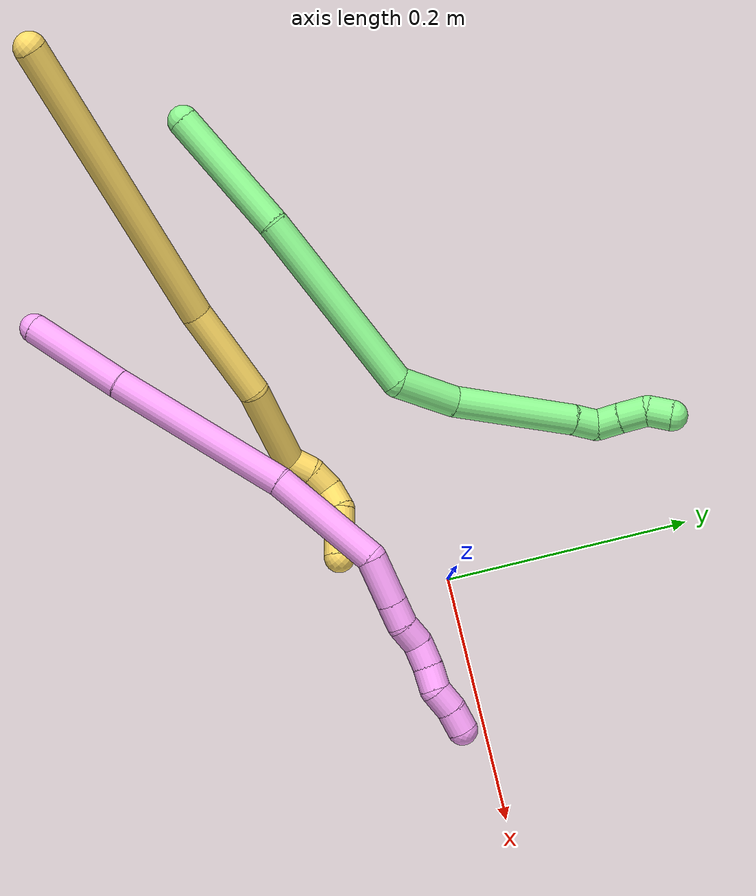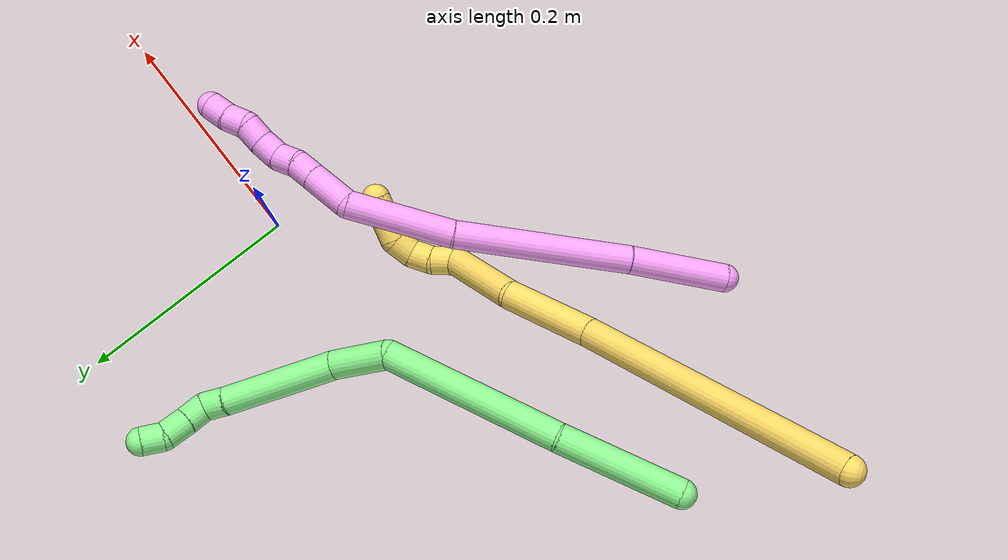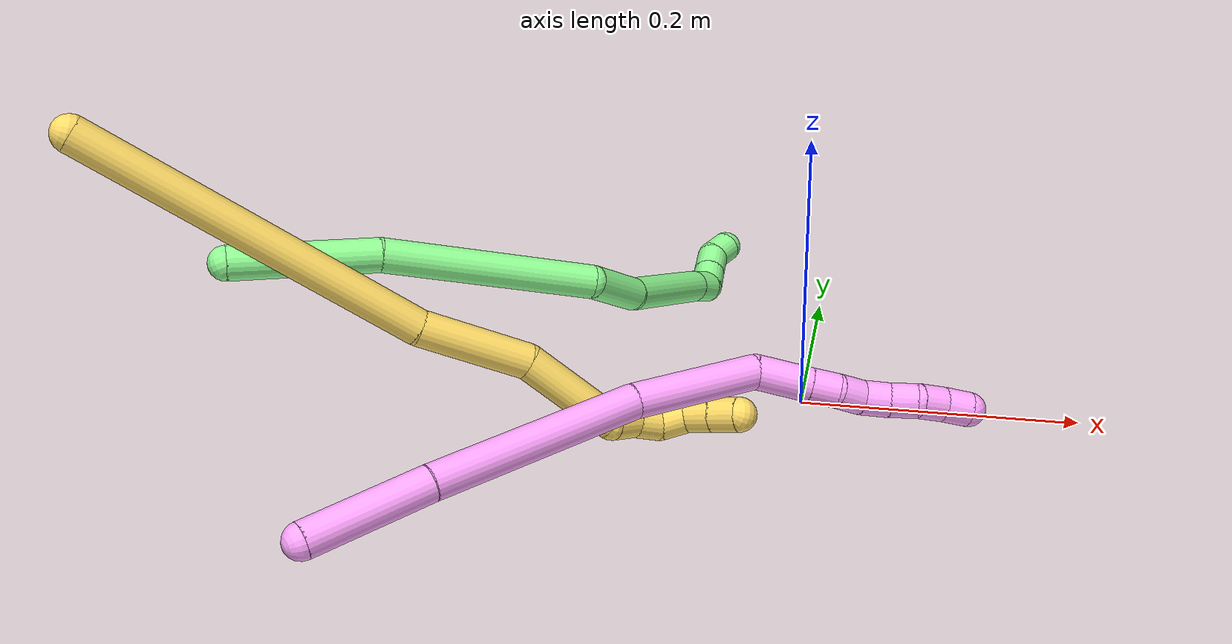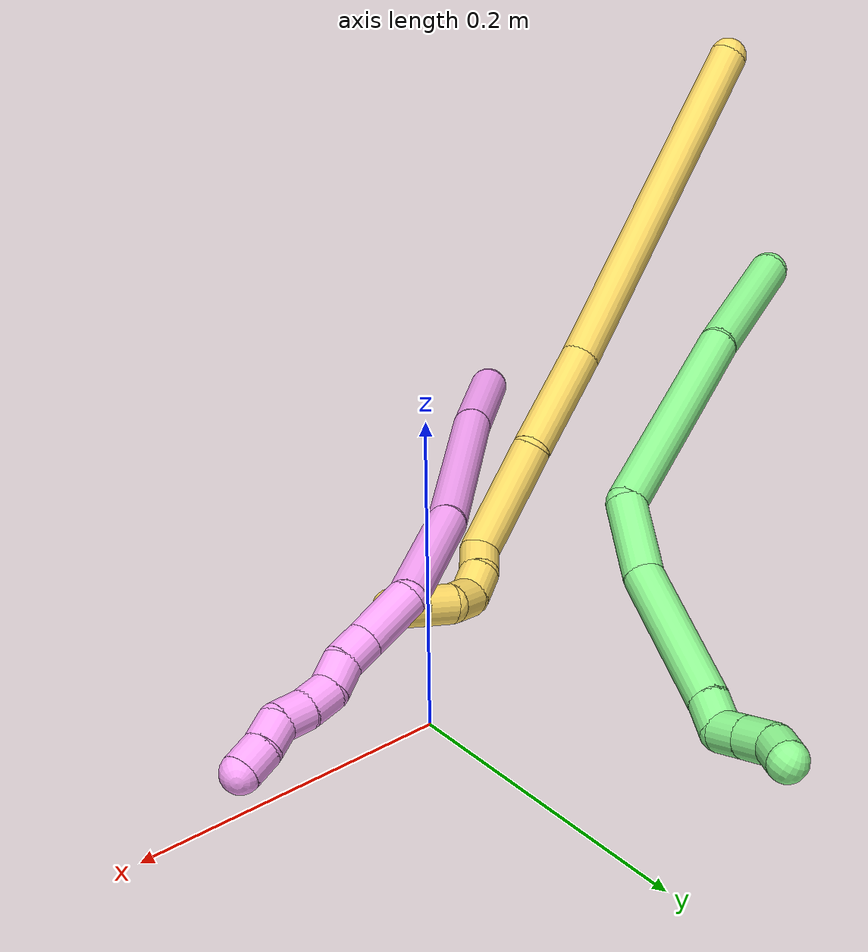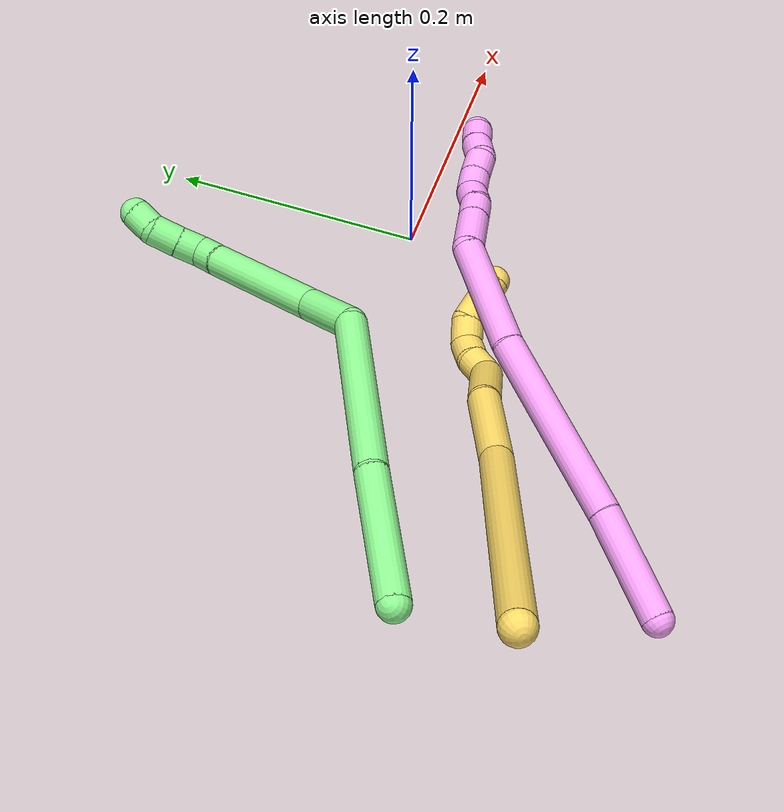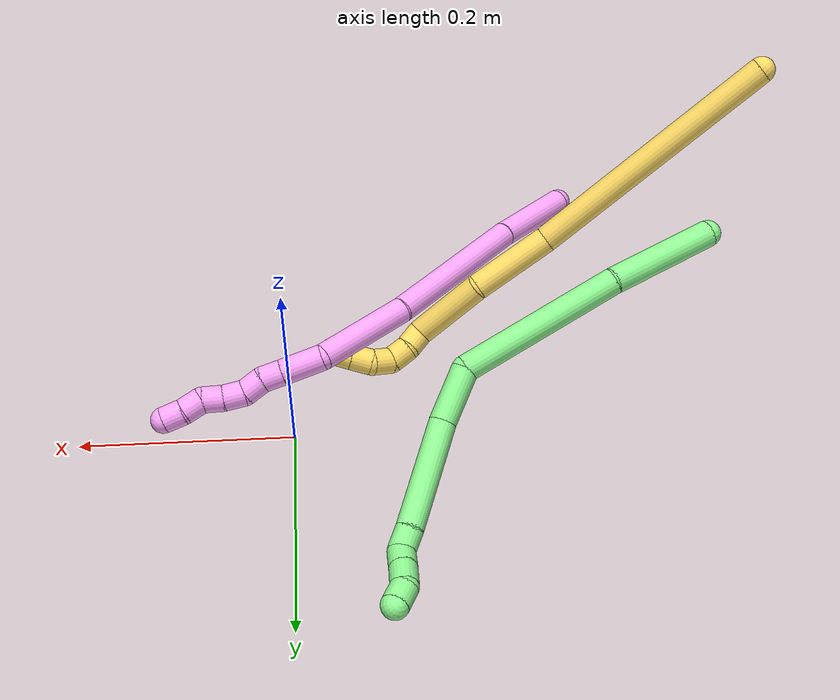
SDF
<sdf version="1.7">
 <world name="default">
  <model name="4">
   <static>0</static>
   <link name="4">
    <collision name="collision-cylinder-e_1_1_4">
     <pose>-0.002207 0.002157 -0.043623 -3.09218 -0.050497 1.59253</pose>
     <geometry><cylinder><radius>0.0125</radius><length>0.087465</length></cylinder></geometry>
     <surface>
      <friction><ode><mu>1.16</mu><mu2>1.16</mu2><slip1>0</slip1><slip2>0</slip2></ode></friction>
      <contact><ode><kp>1e+06</kp><kd>1</kd><max_vel>0</max_vel><min_depth>0.001</min_depth></ode></contact>
     </surface>
    </collision>
    <visual name="visual-cylinder-e_1_1_4">
     <pose>-0.002207 0.002157 -0.043623 -3.09218 -0.050497 1.59253</pose>
     <geometry><cylinder><radius>0.0125</radius><length>0.087465</length></cylinder></geometry>
     <material><ambient>1 0.65098 0.996078 1</ambient></material>
    </visual>
    <collision name="collision-cylinder-e_2_4_5">
     <pose>-0.003205 0.005289 -0.165172 -3.12909 0.015523 -1.78581</pose>
     <geometry><cylinder><radius>0.0125</radius><length>0.155882</length></cylinder></geometry>
     <surface>
      <friction><ode><mu>1.16</mu><mu2>1.16</mu2><slip1>0</slip1><slip2>0</slip2></ode></friction>
      <contact><ode><kp>1e+06</kp><kd>1</kd><max_vel>0</max_vel><min_depth>0.001</min_depth></ode></contact>
     </surface>
    </collision>
    <visual name="visual-cylinder-e_2_4_5">
     <pose>-0.003205 0.005289 -0.165172 -3.12909 0.015523 -1.78581</pose>
     <geometry><cylinder><radius>0.0125</radius><length>0.155882</length></cylinder></geometry>
     <material><ambient>1 0.65098 0.996078 1</ambient></material>
    </visual>
    <collision name="collision-cylinder-e_3_5_6">
     <pose>0.001887 0.013605 -0.289921 -2.98604 0.081732 -0.966393</pose>
     <geometry><cylinder><radius>0.0125</radius><length>0.095109</length></cylinder></geometry>
     <surface>
      <friction><ode><mu>1.16</mu><mu2>1.16</mu2><slip1>0</slip1><slip2>0</slip2></ode></friction>
      <contact><ode><kp>1e+06</kp><kd>1</kd><max_vel>0</max_vel><min_depth>0.001</min_depth></ode></contact>
     </surface>
    </collision>
    <visual name="visual-cylinder-e_3_5_6">
     <pose>0.001887 0.013605 -0.289921 -2.98604 0.081732 -0.966393</pose>
     <geometry><cylinder><radius>0.0125</radius><length>0.095109</length></cylinder></geometry>
     <material><ambient>1 0.65098 0.996078 1</ambient></material>
    </visual>
    <collision name="collision-cylinder-e_4_6_7">
     <pose>0.012942 0.031813 -0.352102 -2.52586 0.364235 -1.0499</pose>
     <geometry><cylinder><radius>0.0125</radius><length>0.040265</length></cylinder></geometry>
     <surface>
      <friction><ode><mu>1.16</mu><mu2>1.16</mu2><slip1>0</slip1><slip2>0</slip2></ode></friction>
      <contact><ode><kp>1e+06</kp><kd>1</kd><max_vel>0</max_vel><min_depth>0.001</min_depth></ode></contact>
     </surface>
    </collision>
    <visual name="visual-cylinder-e_4_6_7">
     <pose>0.012942 0.031813 -0.352102 -2.52586 0.364235 -1.0499</pose>
     <geometry><cylinder><radius>0.0125</radius><length>0.040265</length></cylinder></geometry>
     <material><ambient>1 0.65098 0.996078 1</ambient></material>
    </visual>
    <collision name="collision-cylinder-e_5_7_8">
     <pose>0.023516 0.0482 -0.375297 -2.52778 0.341043 -0.995428</pose>
     <geometry><cylinder><radius>0.0125</radius><length>0.020347</length></cylinder></geometry>
     <surface>
      <friction><ode><mu>1.16</mu><mu2>1.16</mu2><slip1>0</slip1><slip2>0</slip2></ode></friction>
      <contact><ode><kp>1e+06</kp><kd>1</kd><max_vel>0</max_vel><min_depth>0.001</min_depth></ode></contact>
     </surface>
    </collision>
    <visual name="visual-cylinder-e_5_7_8">
     <pose>0.023516 0.0482 -0.375297 -2.52778 0.341043 -0.995428</pose>
     <geometry><cylinder><radius>0.0125</radius><length>0.020347</length></cylinder></geometry>
     <material><ambient>1 0.65098 0.996078 1</ambient></material>
    </visual>
    <collision name="collision-cylinder-e_6_8_9">
     <pose>0.031815 0.05658 -0.391593 -2.81584 0.501545 -2.00081</pose>
     <geometry><cylinder><radius>0.0125</radius><length>0.020366</length></cylinder></geometry>
     <surface>
      <friction><ode><mu>1.16</mu><mu2>1.16</mu2><slip1>0</slip1><slip2>0</slip2></ode></friction>
      <contact><ode><kp>1e+06</kp><kd>1</kd><max_vel>0</max_vel><min_depth>0.001</min_depth></ode></contact>
     </surface>
    </collision>
    <visual name="visual-cylinder-e_6_8_9">
     <pose>0.031815 0.05658 -0.391593 -2.81584 0.501545 -2.00081</pose>
     <geometry><cylinder><radius>0.0125</radius><length>0.020366</length></cylinder></geometry>
     <material><ambient>1 0.65098 0.996078 1</ambient></material>
    </visual>
    <collision name="collision-cylinder-e_7_9_10">
     <pose>0.038781 0.065334 -0.408172 -2.51348 0.203473 -0.609062</pose>
     <geometry><cylinder><radius>0.0125</radius><length>0.020492</length></cylinder></geometry>
     <surface>
      <friction><ode><mu>1.16</mu><mu2>1.16</mu2><slip1>0</slip1><slip2>0</slip2></ode></friction>
      <contact><ode><kp>1e+06</kp><kd>1</kd><max_vel>0</max_vel><min_depth>0.001</min_depth></ode></contact>
     </surface>
    </collision>
    <visual name="visual-cylinder-e_7_9_10">
     <pose>0.038781 0.065334 -0.408172 -2.51348 0.203473 -0.609062</pose>
     <geometry><cylinder><radius>0.0125</radius><length>0.020492</length></cylinder></geometry>
     <material><ambient>1 0.65098 0.996078 1</ambient></material>
    </visual>
    <collision name="collision-cylinder-e_8_10_11">
     <pose>0.041516 0.077882 -0.423764 -2.41426 0.066369 -0.174006</pose>
     <geometry><cylinder><radius>0.0125</radius><length>0.020053</length></cylinder></geometry>
     <surface>
      <friction><ode><mu>1.16</mu><mu2>1.16</mu2><slip1>0</slip1><slip2>0</slip2></ode></friction>
      <contact><ode><kp>1e+06</kp><kd>1</kd><max_vel>0</max_vel><min_depth>0.001</min_depth></ode></contact>
     </surface>
    </collision>
    <visual name="visual-cylinder-e_8_10_11">
     <pose>0.041516 0.077882 -0.423764 -2.41426 0.066369 -0.174006</pose>
     <geometry><cylinder><radius>0.0125</radius><length>0.020053</length></cylinder></geometry>
     <material><ambient>1 0.65098 0.996078 1</ambient></material>
    </visual>
    <collision name="collision-cylinder-e_9_11_12">
     <pose>0.045851 0.087591 -0.44003 -2.80695 0.375443 -1.68804</pose>
     <geometry><cylinder><radius>0.0125</radius><length>0.020013</length></cylinder></geometry>
     <surface>
      <friction><ode><mu>1.16</mu><mu2>1.16</mu2><slip1>0</slip1><slip2>0</slip2></ode></friction>
      <contact><ode><kp>1e+06</kp><kd>1</kd><max_vel>0</max_vel><min_depth>0.001</min_depth></ode></contact>
     </surface>
    </collision>
    <visual name="visual-cylinder-e_9_11_12">
     <pose>0.045851 0.087591 -0.44003 -2.80695 0.375443 -1.68804</pose>
     <geometry><cylinder><radius>0.0125</radius><length>0.020013</length></cylinder></geometry>
     <material><ambient>1 0.65098 0.996078 1</ambient></material>
    </visual>
    <collision name="collision-cylinder-e_10_12_2">
     <pose>0.052968 0.095492 -0.456869 -2.59971 0.351864 -1.13861</pose>
     <geometry><cylinder><radius>0.0125</radius><length>0.020008</length></cylinder></geometry>
     <surface>
      <friction><ode><mu>1.16</mu><mu2>1.16</mu2><slip1>0</slip1><slip2>0</slip2></ode></friction>
      <contact><ode><kp>1e+06</kp><kd>1</kd><max_vel>0</max_vel><min_depth>0.001</min_depth></ode></contact>
     </surface>
    </collision>
    <visual name="visual-cylinder-e_10_12_2">
     <pose>0.052968 0.095492 -0.456869 -2.59971 0.351864 -1.13861</pose>
     <geometry><cylinder><radius>0.0125</radius><length>0.020008</length></cylinder></geometry>
     <material><ambient>1 0.65098 0.996078 1</ambient></material>
    </visual>
    <collision name="collision-sphere-2">
     <pose>0.056415 0.100335 -0.464915 0 -0 0</pose>
     <geometry><sphere><radius>0.0125</radius></sphere></geometry>
     <surface>
      <friction><ode><mu>1.16</mu><mu2>1.16</mu2><slip1>0</slip1><slip2>0</slip2></ode></friction>
      <contact><ode><kp>1e+06</kp><kd>1</kd><max_vel>0</max_vel><min_depth>0.001</min_depth></ode></contact>
     </surface>
    </collision>
    <visual name="visual-sphere-2">
     <pose>0.056415 0.100335 -0.464915 0 -0 0</pose>
     <geometry><sphere><radius>0.0125</radius></sphere></geometry>
     <material><ambient>1 0.65098 0.996078 1</ambient></material>
    </visual>
    <collision name="collision-sphere-12">
     <pose>0.04952 0.090649 -0.448823 0 -0 0</pose>
     <geometry><sphere><radius>0.0125</radius></sphere></geometry>
     <surface>
      <friction><ode><mu>1.16</mu><mu2>1.16</mu2><slip1>0</slip1><slip2>0</slip2></ode></friction>
      <contact><ode><kp>1e+06</kp><kd>1</kd><max_vel>0</max_vel><min_depth>0.001</min_depth></ode></contact>
     </surface>
    </collision>
    <visual name="visual-sphere-12">
     <pose>0.04952 0.090649 -0.448823 0 -0 0</pose>
     <geometry><sphere><radius>0.0125</radius></sphere></geometry>
     <material><ambient>1 0.65098 0.996078 1</ambient></material>
    </visual>
    <collision name="collision-sphere-11">
     <pose>0.042181 0.084534 -0.431237 0 -0 0</pose>
     <geometry><sphere><radius>0.0125</radius></sphere></geometry>
     <surface>
      <friction><ode><mu>1.16</mu><mu2>1.16</mu2><slip1>0</slip1><slip2>0</slip2></ode></friction>
      <contact><ode><kp>1e+06</kp><kd>1</kd><max_vel>0</max_vel><min_depth>0.001</min_depth></ode></contact>
     </surface>
    </collision>
    <visual name="visual-sphere-11">
     <pose>0.042181 0.084534 -0.431237 0 -0 0</pose>
     <geometry><sphere><radius>0.0125</radius></sphere></geometry>
     <material><ambient>1 0.65098 0.996078 1</ambient></material>
    </visual>
    <collision name="collision-sphere-10">
     <pose>0.040851 0.07123 -0.416292 0 -0 0</pose>
     <geometry><sphere><radius>0.0125</radius></sphere></geometry>
     <surface>
      <friction><ode><mu>1.16</mu><mu2>1.16</mu2><slip1>0</slip1><slip2>0</slip2></ode></friction>
      <contact><ode><kp>1e+06</kp><kd>1</kd><max_vel>0</max_vel><min_depth>0.001</min_depth></ode></contact>
     </surface>
    </collision>
    <visual name="visual-sphere-10">
     <pose>0.040851 0.07123 -0.416292 0 -0 0</pose>
     <geometry><sphere><radius>0.0125</radius></sphere></geometry>
     <material><ambient>1 0.65098 0.996078 1</ambient></material>
    </visual>
    <collision name="collision-sphere-9">
     <pose>0.036711 0.059437 -0.400053 0 -0 0</pose>
     <geometry><sphere><radius>0.0125</radius></sphere></geometry>
     <surface>
      <friction><ode><mu>1.16</mu><mu2>1.16</mu2><slip1>0</slip1><slip2>0</slip2></ode></friction>
      <contact><ode><kp>1e+06</kp><kd>1</kd><max_vel>0</max_vel><min_depth>0.001</min_depth></ode></contact>
     </surface>
    </collision>
    <visual name="visual-sphere-9">
     <pose>0.036711 0.059437 -0.400053 0 -0 0</pose>
     <geometry><sphere><radius>0.0125</radius></sphere></geometry>
     <material><ambient>1 0.65098 0.996078 1</ambient></material>
    </visual>
    <collision name="collision-sphere-4">
     <pose>-0.004415 0.004315 -0.087247 0 -0 0</pose>
     <geometry><sphere><radius>0.0125</radius></sphere></geometry>
     <surface>
      <friction><ode><mu>1.16</mu><mu2>1.16</mu2><slip1>0</slip1><slip2>0</slip2></ode></friction>
      <contact><ode><kp>1e+06</kp><kd>1</kd><max_vel>0</max_vel><min_depth>0.001</min_depth></ode></contact>
     </surface>
    </collision>
    <visual name="visual-sphere-4">
     <pose>-0.004415 0.004315 -0.087247 0 -0 0</pose>
     <geometry><sphere><radius>0.0125</radius></sphere></geometry>
     <material><ambient>1 0.65098 0.996078 1</ambient></material>
    </visual>
    <collision name="collision-sphere-1">
     <geometry><sphere><radius>0.0125</radius></sphere></geometry>
     <surface>
      <friction><ode><mu>1.16</mu><mu2>1.16</mu2><slip1>0</slip1><slip2>0</slip2></ode></friction>
      <contact><ode><kp>1e+06</kp><kd>1</kd><max_vel>0</max_vel><min_depth>0.001</min_depth></ode></contact>
     </surface>
    </collision>
    <visual name="visual-sphere-1">
     <geometry><sphere><radius>0.0125</radius></sphere></geometry>
     <material><ambient>1 0.65098 0.996078 1</ambient></material>
    </visual>
    <collision name="collision-sphere-8">
     <pose>0.026919 0.053722 -0.383134 0 -0 0</pose>
     <geometry><sphere><radius>0.0125</radius></sphere></geometry>
     <surface>
      <friction><ode><mu>1.16</mu><mu2>1.16</mu2><slip1>0</slip1><slip2>0</slip2></ode></friction>
      <contact><ode><kp>1e+06</kp><kd>1</kd><max_vel>0</max_vel><min_depth>0.001</min_depth></ode></contact>
     </surface>
    </collision>
    <visual name="visual-sphere-8">
     <pose>0.026919 0.053722 -0.383134 0 -0 0</pose>
     <geometry><sphere><radius>0.0125</radius></sphere></geometry>
     <material><ambient>1 0.65098 0.996078 1</ambient></material>
    </visual>
    <collision name="collision-sphere-5">
     <pose>-0.001995 0.006263 -0.243098 0 -0 0</pose>
     <geometry><sphere><radius>0.0125</radius></sphere></geometry>
     <surface>
      <friction><ode><mu>1.16</mu><mu2>1.16</mu2><slip1>0</slip1><slip2>0</slip2></ode></friction>
      <contact><ode><kp>1e+06</kp><kd>1</kd><max_vel>0</max_vel><min_depth>0.001</min_depth></ode></contact>
     </surface>
    </collision>
    <visual name="visual-sphere-5">
     <pose>-0.001995 0.006263 -0.243098 0 -0 0</pose>
     <geometry><sphere><radius>0.0125</radius></sphere></geometry>
     <material><ambient>1 0.65098 0.996078 1</ambient></material>
    </visual>
    <collision name="collision-sphere-6">
     <pose>0.00577 0.020948 -0.336745 0 -0 0</pose>
     <geometry><sphere><radius>0.0125</radius></sphere></geometry>
     <surface>
      <friction><ode><mu>1.16</mu><mu2>1.16</mu2><slip1>0</slip1><slip2>0</slip2></ode></friction>
      <contact><ode><kp>1e+06</kp><kd>1</kd><max_vel>0</max_vel><min_depth>0.001</min_depth></ode></contact>
     </surface>
    </collision>
    <visual name="visual-sphere-6">
     <pose>0.00577 0.020948 -0.336745 0 -0 0</pose>
     <geometry><sphere><radius>0.0125</radius></sphere></geometry>
     <material><ambient>1 0.65098 0.996078 1</ambient></material>
    </visual>
    <collision name="collision-sphere-7">
     <pose>0.020114 0.042678 -0.367459 0 -0 0</pose>
     <geometry><sphere><radius>0.0125</radius></sphere></geometry>
     <surface>
      <friction><ode><mu>1.16</mu><mu2>1.16</mu2><slip1>0</slip1><slip2>0</slip2></ode></friction>
      <contact><ode><kp>1e+06</kp><kd>1</kd><max_vel>0</max_vel><min_depth>0.001</min_depth></ode></contact>
     </surface>
    </collision>
    <visual name="visual-sphere-7">
     <pose>0.020114 0.042678 -0.367459 0 -0 0</pose>
     <geometry><sphere><radius>0.0125</radius></sphere></geometry>
     <material><ambient>1 0.65098 0.996078 1</ambient></material>
    </visual>
    <inertial>
     <pose>0.009478 0.02457 -0.24347 0 -0 0</pose>
     <mass>0.5</mass>
     <inertia>
      <ixx>-0.000345</ixx>
      <ixy>0</ixy>
      <ixz>0</ixz>
      <iyy>-0.000296</iyy>
      <iyz>0</iyz>
      <izz>-7.6e-05</izz>
     </inertia>
    </inertial>
   </link>
   <pose>-0.278934 -0.281419 0.012027 -3.14026 1.44904 0.795305</pose>
  </model>
  <model name="5">
   <static>0</static>
   <link name="5">
    <collision name="collision-cylinder-e_1_1_4">
     <pose>0.037878 0.002955 -0.117432 -3.11644 0.311924 -2.98195</pose>
     <geometry><cylinder><radius>0.0125</radius><length>0.246851</length></cylinder></geometry>
     <surface>
      <friction><ode><mu>1.16</mu><mu2>1.16</mu2><slip1>0</slip1><slip2>0</slip2></ode></friction>
      <contact><ode><kp>1e+06</kp><kd>1</kd><max_vel>0</max_vel><min_depth>0.001</min_depth></ode></contact>
     </surface>
    </collision>
    <visual name="visual-cylinder-e_1_1_4">
     <pose>0.037878 0.002955 -0.117432 -3.11644 0.311924 -2.98195</pose>
     <geometry><cylinder><radius>0.0125</radius><length>0.246851</length></cylinder></geometry>
     <material><ambient>1 0.858824 0.4 1</ambient></material>
    </visual>
    <collision name="collision-cylinder-e_2_4_5">
     <pose>0.081109 0.011124 -0.273452 -3.00725 0.136627 -1.58773</pose>
     <geometry><cylinder><radius>0.0125</radius><length>0.078609</length></cylinder></geometry>
     <surface>
      <friction><ode><mu>1.16</mu><mu2>1.16</mu2><slip1>0</slip1><slip2>0</slip2></ode></friction>
      <contact><ode><kp>1e+06</kp><kd>1</kd><max_vel>0</max_vel><min_depth>0.001</min_depth></ode></contact>
     </surface>
    </collision>
    <visual name="visual-cylinder-e_2_4_5">
     <pose>0.081109 0.011124 -0.273452 -3.00725 0.136627 -1.58773</pose>
     <geometry><cylinder><radius>0.0125</radius><length>0.078609</length></cylinder></geometry>
     <material><ambient>1 0.858824 0.4 1</ambient></material>
    </visual>
    <collision name="collision-cylinder-e_3_5_6">
     <pose>0.101687 0.015857 -0.345722 3.12728 0.424475 3.07518</pose>
     <geometry><cylinder><radius>0.0125</radius><length>0.073933</length></cylinder></geometry>
     <surface>
      <friction><ode><mu>1.16</mu><mu2>1.16</mu2><slip1>0</slip1><slip2>0</slip2></ode></friction>
      <contact><ode><kp>1e+06</kp><kd>1</kd><max_vel>0</max_vel><min_depth>0.001</min_depth></ode></contact>
     </surface>
    </collision>
    <visual name="visual-cylinder-e_3_5_6">
     <pose>0.101687 0.015857 -0.345722 3.12728 0.424475 3.07518</pose>
     <geometry><cylinder><radius>0.0125</radius><length>0.073933</length></cylinder></geometry>
     <material><ambient>1 0.858824 0.4 1</ambient></material>
    </visual>
    <collision name="collision-cylinder-e_4_6_7">
     <pose>0.113742 0.015101 -0.38904 3.11315 -0.317725 -2.96454</pose>
     <geometry><cylinder><radius>0.0125</radius><length>0.020293</length></cylinder></geometry>
     <surface>
      <friction><ode><mu>1.16</mu><mu2>1.16</mu2><slip1>0</slip1><slip2>0</slip2></ode></friction>
      <contact><ode><kp>1e+06</kp><kd>1</kd><max_vel>0</max_vel><min_depth>0.001</min_depth></ode></contact>
     </surface>
    </collision>
    <visual name="visual-cylinder-e_4_6_7">
     <pose>0.113742 0.015101 -0.38904 3.11315 -0.317725 -2.96454</pose>
     <geometry><cylinder><radius>0.0125</radius><length>0.020293</length></cylinder></geometry>
     <material><ambient>1 0.858824 0.4 1</ambient></material>
    </visual>
    <collision name="collision-cylinder-e_5_7_8">
     <pose>0.110204 0.016136 -0.40865 -3.01108 -0.036521 0.545011</pose>
     <geometry><cylinder><radius>0.0125</radius><length>0.020135</length></cylinder></geometry>
     <surface>
      <friction><ode><mu>1.16</mu><mu2>1.16</mu2><slip1>0</slip1><slip2>0</slip2></ode></friction>
      <contact><ode><kp>1e+06</kp><kd>1</kd><max_vel>0</max_vel><min_depth>0.001</min_depth></ode></contact>
     </surface>
    </collision>
    <visual name="visual-cylinder-e_5_7_8">
     <pose>0.110204 0.016136 -0.40865 -3.01108 -0.036521 0.545011</pose>
     <geometry><cylinder><radius>0.0125</radius><length>0.020135</length></cylinder></geometry>
     <material><ambient>1 0.858824 0.4 1</ambient></material>
    </visual>
    <collision name="collision-cylinder-e_6_8_9">
     <pose>0.107763 0.023966 -0.425946 -2.41399 -0.208467 0.536278</pose>
     <geometry><cylinder><radius>0.0125</radius><length>0.020042</length></cylinder></geometry>
     <surface>
      <friction><ode><mu>1.16</mu><mu2>1.16</mu2><slip1>0</slip1><slip2>0</slip2></ode></friction>
      <contact><ode><kp>1e+06</kp><kd>1</kd><max_vel>0</max_vel><min_depth>0.001</min_depth></ode></contact>
     </surface>
    </collision>
    <visual name="visual-cylinder-e_6_8_9">
     <pose>0.107763 0.023966 -0.425946 -2.41399 -0.208467 0.536278</pose>
     <geometry><cylinder><radius>0.0125</radius><length>0.020042</length></cylinder></geometry>
     <material><ambient>1 0.858824 0.4 1</ambient></material>
    </visual>
    <collision name="collision-cylinder-e_7_9_10">
     <pose>0.107761 0.038879 -0.4384 -2.11969 0.207632 -0.367513</pose>
     <geometry><cylinder><radius>0.0125</radius><length>0.020108</length></cylinder></geometry>
     <surface>
      <friction><ode><mu>1.16</mu><mu2>1.16</mu2><slip1>0</slip1><slip2>0</slip2></ode></friction>
      <contact><ode><kp>1e+06</kp><kd>1</kd><max_vel>0</max_vel><min_depth>0.001</min_depth></ode></contact>
     </surface>
    </collision>
    <visual name="visual-cylinder-e_7_9_10">
     <pose>0.107761 0.038879 -0.4384 -2.11969 0.207632 -0.367513</pose>
     <geometry><cylinder><radius>0.0125</radius><length>0.020108</length></cylinder></geometry>
     <material><ambient>1 0.858824 0.4 1</ambient></material>
    </visual>
    <collision name="collision-cylinder-e_8_10_2">
     <pose>0.111959 0.055669 -0.44856 -2.11022 0.213806 -0.374199</pose>
     <geometry><cylinder><radius>0.0125</radius><length>0.020029</length></cylinder></geometry>
     <surface>
      <friction><ode><mu>1.16</mu><mu2>1.16</mu2><slip1>0</slip1><slip2>0</slip2></ode></friction>
      <contact><ode><kp>1e+06</kp><kd>1</kd><max_vel>0</max_vel><min_depth>0.001</min_depth></ode></contact>
     </surface>
    </collision>
    <visual name="visual-cylinder-e_8_10_2">
     <pose>0.111959 0.055669 -0.44856 -2.11022 0.213806 -0.374199</pose>
     <geometry><cylinder><radius>0.0125</radius><length>0.020029</length></cylinder></geometry>
     <material><ambient>1 0.858824 0.4 1</ambient></material>
    </visual>
    <collision name="collision-sphere-2">
     <pose>0.114084 0.064066 -0.453587 0 -0 0</pose>
     <geometry><sphere><radius>0.0125</radius></sphere></geometry>
     <surface>
      <friction><ode><mu>1.16</mu><mu2>1.16</mu2><slip1>0</slip1><slip2>0</slip2></ode></friction>
      <contact><ode><kp>1e+06</kp><kd>1</kd><max_vel>0</max_vel><min_depth>0.001</min_depth></ode></contact>
     </surface>
    </collision>
    <visual name="visual-sphere-2">
     <pose>0.114084 0.064066 -0.453587 0 -0 0</pose>
     <geometry><sphere><radius>0.0125</radius></sphere></geometry>
     <material><ambient>1 0.858824 0.4 1</ambient></material>
    </visual>
    <collision name="collision-sphere-10">
     <pose>0.109834 0.047272 -0.443533 0 -0 0</pose>
     <geometry><sphere><radius>0.0125</radius></sphere></geometry>
     <surface>
      <friction><ode><mu>1.16</mu><mu2>1.16</mu2><slip1>0</slip1><slip2>0</slip2></ode></friction>
      <contact><ode><kp>1e+06</kp><kd>1</kd><max_vel>0</max_vel><min_depth>0.001</min_depth></ode></contact>
     </surface>
    </collision>
    <visual name="visual-sphere-10">
     <pose>0.109834 0.047272 -0.443533 0 -0 0</pose>
     <geometry><sphere><radius>0.0125</radius></sphere></geometry>
     <material><ambient>1 0.858824 0.4 1</ambient></material>
    </visual>
    <collision name="collision-sphere-9">
     <pose>0.105689 0.030486 -0.433267 0 -0 0</pose>
     <geometry><sphere><radius>0.0125</radius></sphere></geometry>
     <surface>
      <friction><ode><mu>1.16</mu><mu2>1.16</mu2><slip1>0</slip1><slip2>0</slip2></ode></friction>
      <contact><ode><kp>1e+06</kp><kd>1</kd><max_vel>0</max_vel><min_depth>0.001</min_depth></ode></contact>
     </surface>
    </collision>
    <visual name="visual-sphere-9">
     <pose>0.105689 0.030486 -0.433267 0 -0 0</pose>
     <geometry><sphere><radius>0.0125</radius></sphere></geometry>
     <material><ambient>1 0.858824 0.4 1</ambient></material>
    </visual>
    <collision name="collision-sphere-4">
     <pose>0.075756 0.005909 -0.234865 0 -0 0</pose>
     <geometry><sphere><radius>0.0125</radius></sphere></geometry>
     <surface>
      <friction><ode><mu>1.16</mu><mu2>1.16</mu2><slip1>0</slip1><slip2>0</slip2></ode></friction>
      <contact><ode><kp>1e+06</kp><kd>1</kd><max_vel>0</max_vel><min_depth>0.001</min_depth></ode></contact>
     </surface>
    </collision>
    <visual name="visual-sphere-4">
     <pose>0.075756 0.005909 -0.234865 0 -0 0</pose>
     <geometry><sphere><radius>0.0125</radius></sphere></geometry>
     <material><ambient>1 0.858824 0.4 1</ambient></material>
    </visual>
    <collision name="collision-sphere-1">
     <geometry><sphere><radius>0.0125</radius></sphere></geometry>
     <surface>
      <friction><ode><mu>1.16</mu><mu2>1.16</mu2><slip1>0</slip1><slip2>0</slip2></ode></friction>
      <contact><ode><kp>1e+06</kp><kd>1</kd><max_vel>0</max_vel><min_depth>0.001</min_depth></ode></contact>
     </surface>
    </collision>
    <visual name="visual-sphere-1">
     <geometry><sphere><radius>0.0125</radius></sphere></geometry>
     <material><ambient>1 0.858824 0.4 1</ambient></material>
    </visual>
    <collision name="collision-sphere-8">
     <pose>0.109837 0.017445 -0.418625 0 -0 0</pose>
     <geometry><sphere><radius>0.0125</radius></sphere></geometry>
     <surface>
      <friction><ode><mu>1.16</mu><mu2>1.16</mu2><slip1>0</slip1><slip2>0</slip2></ode></friction>
      <contact><ode><kp>1e+06</kp><kd>1</kd><max_vel>0</max_vel><min_depth>0.001</min_depth></ode></contact>
     </surface>
    </collision>
    <visual name="visual-sphere-8">
     <pose>0.109837 0.017445 -0.418625 0 -0 0</pose>
     <geometry><sphere><radius>0.0125</radius></sphere></geometry>
     <material><ambient>1 0.858824 0.4 1</ambient></material>
    </visual>
    <collision name="collision-sphere-5">
     <pose>0.086463 0.016339 -0.31204 0 -0 0</pose>
     <geometry><sphere><radius>0.0125</radius></sphere></geometry>
     <surface>
      <friction><ode><mu>1.16</mu><mu2>1.16</mu2><slip1>0</slip1><slip2>0</slip2></ode></friction>
      <contact><ode><kp>1e+06</kp><kd>1</kd><max_vel>0</max_vel><min_depth>0.001</min_depth></ode></contact>
     </surface>
    </collision>
    <visual name="visual-sphere-5">
     <pose>0.086463 0.016339 -0.31204 0 -0 0</pose>
     <geometry><sphere><radius>0.0125</radius></sphere></geometry>
     <material><ambient>1 0.858824 0.4 1</ambient></material>
    </visual>
    <collision name="collision-sphere-6">
     <pose>0.116911 0.015375 -0.379405 0 -0 0</pose>
     <geometry><sphere><radius>0.0125</radius></sphere></geometry>
     <surface>
      <friction><ode><mu>1.16</mu><mu2>1.16</mu2><slip1>0</slip1><slip2>0</slip2></ode></friction>
      <contact><ode><kp>1e+06</kp><kd>1</kd><max_vel>0</max_vel><min_depth>0.001</min_depth></ode></contact>
     </surface>
    </collision>
    <visual name="visual-sphere-6">
     <pose>0.116911 0.015375 -0.379405 0 -0 0</pose>
     <geometry><sphere><radius>0.0125</radius></sphere></geometry>
     <material><ambient>1 0.858824 0.4 1</ambient></material>
    </visual>
    <collision name="collision-sphere-7">
     <pose>0.110572 0.014827 -0.398675 0 -0 0</pose>
     <geometry><sphere><radius>0.0125</radius></sphere></geometry>
     <surface>
      <friction><ode><mu>1.16</mu><mu2>1.16</mu2><slip1>0</slip1><slip2>0</slip2></ode></friction>
      <contact><ode><kp>1e+06</kp><kd>1</kd><max_vel>0</max_vel><min_depth>0.001</min_depth></ode></contact>
     </surface>
    </collision>
    <visual name="visual-sphere-7">
     <pose>0.110572 0.014827 -0.398675 0 -0 0</pose>
     <geometry><sphere><radius>0.0125</radius></sphere></geometry>
     <material><ambient>1 0.858824 0.4 1</ambient></material>
    </visual>
    <inertial>
     <pose>0.068681 0.011569 -0.237007 0 -0 0</pose>
     <mass>0.5</mass>
     <inertia>
      <ixx>-0.00144</ixx>
      <ixy>0</ixy>
      <ixz>0</ixz>
      <iyy>0.001058</iyy>
      <iyz>0</iyz>
      <izz>-0.000483</izz>
     </inertia>
    </inertial>
   </link>
   <pose>-0.435427 -0.213885 0.240101 1.01132 0.715176 -1.33708</pose>
  </model>
  <model name="13">
   <static>0</static>
   <link name="13">
    <collision name="collision-cylinder-e_1_1_4">
     <pose>0.04079 0.030685 -0.01466 -2.01649 0.875838 -1.27754</pose>
     <geometry><cylinder><radius>0.0125</radius><length>0.106213</length></cylinder></geometry>
     <surface>
      <friction><ode><mu>1.16</mu><mu2>1.16</mu2><slip1>0</slip1><slip2>0</slip2></ode></friction>
      <contact><ode><kp>1e+06</kp><kd>1</kd><max_vel>0</max_vel><min_depth>0.001</min_depth></ode></contact>
     </surface>
    </collision>
    <visual name="visual-cylinder-e_1_1_4">
     <pose>0.04079 0.030685 -0.01466 -2.01649 0.875838 -1.27754</pose>
     <geometry><cylinder><radius>0.0125</radius><length>0.106213</length></cylinder></geometry>
     <material><ambient>0.564706 0.984314 0.572549 1</ambient></material>
    </visual>
    <collision name="collision-cylinder-e_2_4_5">
     <pose>0.135615 0.10658 -0.063652 -2.22029 0.760734 -1.35642</pose>
     <geometry><cylinder><radius>0.0125</radius><length>0.156748</length></cylinder></geometry>
     <surface>
      <friction><ode><mu>1.16</mu><mu2>1.16</mu2><slip1>0</slip1><slip2>0</slip2></ode></friction>
      <contact><ode><kp>1e+06</kp><kd>1</kd><max_vel>0</max_vel><min_depth>0.001</min_depth></ode></contact>
     </surface>
    </collision>
    <visual name="visual-cylinder-e_2_4_5">
     <pose>0.135615 0.10658 -0.063652 -2.22029 0.760734 -1.35642</pose>
     <geometry><cylinder><radius>0.0125</radius><length>0.156748</length></cylinder></geometry>
     <material><ambient>0.564706 0.984314 0.572549 1</ambient></material>
    </visual>
    <collision name="collision-cylinder-e_3_5_6">
     <pose>0.1943 0.175665 -0.107386 -1.94587 0.179233 -0.262381</pose>
     <geometry><cylinder><radius>0.0125</radius><length>0.052155</length></cylinder></geometry>
     <surface>
      <friction><ode><mu>1.16</mu><mu2>1.16</mu2><slip1>0</slip1><slip2>0</slip2></ode></friction>
      <contact><ode><kp>1e+06</kp><kd>1</kd><max_vel>0</max_vel><min_depth>0.001</min_depth></ode></contact>
     </surface>
    </collision>
    <visual name="visual-cylinder-e_3_5_6">
     <pose>0.1943 0.175665 -0.107386 -1.94587 0.179233 -0.262381</pose>
     <geometry><cylinder><radius>0.0125</radius><length>0.052155</length></cylinder></geometry>
     <material><ambient>0.564706 0.984314 0.572549 1</ambient></material>
    </visual>
    <collision name="collision-cylinder-e_4_6_7">
     <pose>0.207605 0.248761 -0.122576 -1.68791 0.172925 -0.194334</pose>
     <geometry><cylinder><radius>0.0125</radius><length>0.100619</length></cylinder></geometry>
     <surface>
      <friction><ode><mu>1.16</mu><mu2>1.16</mu2><slip1>0</slip1><slip2>0</slip2></ode></friction>
      <contact><ode><kp>1e+06</kp><kd>1</kd><max_vel>0</max_vel><min_depth>0.001</min_depth></ode></contact>
     </surface>
    </collision>
    <visual name="visual-cylinder-e_4_6_7">
     <pose>0.207605 0.248761 -0.122576 -1.68791 0.172925 -0.194334</pose>
     <geometry><cylinder><radius>0.0125</radius><length>0.100619</length></cylinder></geometry>
     <material><ambient>0.564706 0.984314 0.572549 1</ambient></material>
    </visual>
    <collision name="collision-cylinder-e_5_7_8">
     <pose>0.218406 0.308201 -0.13049 -1.77557 0.202646 -0.248624</pose>
     <geometry><cylinder><radius>0.0125</radius><length>0.021314</length></cylinder></geometry>
     <surface>
      <friction><ode><mu>1.16</mu><mu2>1.16</mu2><slip1>0</slip1><slip2>0</slip2></ode></friction>
      <contact><ode><kp>1e+06</kp><kd>1</kd><max_vel>0</max_vel><min_depth>0.001</min_depth></ode></contact>
     </surface>
    </collision>
    <visual name="visual-cylinder-e_5_7_8">
     <pose>0.218406 0.308201 -0.13049 -1.77557 0.202646 -0.248624</pose>
     <geometry><cylinder><radius>0.0125</radius><length>0.021314</length></cylinder></geometry>
     <material><ambient>0.564706 0.984314 0.572549 1</ambient></material>
    </visual>
    <collision name="collision-cylinder-e_6_8_9">
     <pose>0.221095 0.327053 -0.127477 -1.03411 0.054102 -0.030771</pose>
     <geometry><cylinder><radius>0.0125</radius><length>0.020116</length></cylinder></geometry>
     <surface>
      <friction><ode><mu>1.16</mu><mu2>1.16</mu2><slip1>0</slip1><slip2>0</slip2></ode></friction>
      <contact><ode><kp>1e+06</kp><kd>1</kd><max_vel>0</max_vel><min_depth>0.001</min_depth></ode></contact>
     </surface>
    </collision>
    <visual name="visual-cylinder-e_6_8_9">
     <pose>0.221095 0.327053 -0.127477 -1.03411 0.054102 -0.030771</pose>
     <geometry><cylinder><radius>0.0125</radius><length>0.020116</length></cylinder></geometry>
     <material><ambient>0.564706 0.984314 0.572549 1</ambient></material>
    </visual>
    <collision name="collision-cylinder-e_7_9_10">
     <pose>0.222761 0.345396 -0.11651 -1.02993 0.09871 -0.05589</pose>
     <geometry><cylinder><radius>0.0125</radius><length>0.022767</length></cylinder></geometry>
     <surface>
      <friction><ode><mu>1.16</mu><mu2>1.16</mu2><slip1>0</slip1><slip2>0</slip2></ode></friction>
      <contact><ode><kp>1e+06</kp><kd>1</kd><max_vel>0</max_vel><min_depth>0.001</min_depth></ode></contact>
     </surface>
    </collision>
    <visual name="visual-cylinder-e_7_9_10">
     <pose>0.222761 0.345396 -0.11651 -1.02993 0.09871 -0.05589</pose>
     <geometry><cylinder><radius>0.0125</radius><length>0.022767</length></cylinder></geometry>
     <material><ambient>0.564706 0.984314 0.572549 1</ambient></material>
    </visual>
    <collision name="collision-cylinder-e_8_10_2">
     <pose>0.228169 0.363982 -0.108794 -1.36166 0.441386 -0.359535</pose>
     <geometry><cylinder><radius>0.0125</radius><length>0.020068</length></cylinder></geometry>
     <surface>
      <friction><ode><mu>1.16</mu><mu2>1.16</mu2><slip1>0</slip1><slip2>0</slip2></ode></friction>
      <contact><ode><kp>1e+06</kp><kd>1</kd><max_vel>0</max_vel><min_depth>0.001</min_depth></ode></contact>
     </surface>
    </collision>
    <visual name="visual-cylinder-e_8_10_2">
     <pose>0.228169 0.363982 -0.108794 -1.36166 0.441386 -0.359535</pose>
     <geometry><cylinder><radius>0.0125</radius><length>0.020068</length></cylinder></geometry>
     <material><ambient>0.564706 0.984314 0.572549 1</ambient></material>
    </visual>
    <collision name="collision-sphere-2">
     <pose>0.232456 0.372857 -0.10691 0 -0 0</pose>
     <geometry><sphere><radius>0.0125</radius></sphere></geometry>
     <surface>
      <friction><ode><mu>1.16</mu><mu2>1.16</mu2><slip1>0</slip1><slip2>0</slip2></ode></friction>
      <contact><ode><kp>1e+06</kp><kd>1</kd><max_vel>0</max_vel><min_depth>0.001</min_depth></ode></contact>
     </surface>
    </collision>
    <visual name="visual-sphere-2">
     <pose>0.232456 0.372857 -0.10691 0 -0 0</pose>
     <geometry><sphere><radius>0.0125</radius></sphere></geometry>
     <material><ambient>0.564706 0.984314 0.572549 1</ambient></material>
    </visual>
    <collision name="collision-sphere-10">
     <pose>0.223883 0.355107 -0.110677 0 -0 0</pose>
     <geometry><sphere><radius>0.0125</radius></sphere></geometry>
     <surface>
      <friction><ode><mu>1.16</mu><mu2>1.16</mu2><slip1>0</slip1><slip2>0</slip2></ode></friction>
      <contact><ode><kp>1e+06</kp><kd>1</kd><max_vel>0</max_vel><min_depth>0.001</min_depth></ode></contact>
     </surface>
    </collision>
    <visual name="visual-sphere-10">
     <pose>0.223883 0.355107 -0.110677 0 -0 0</pose>
     <geometry><sphere><radius>0.0125</radius></sphere></geometry>
     <material><ambient>0.564706 0.984314 0.572549 1</ambient></material>
    </visual>
    <collision name="collision-sphere-9">
     <pose>0.221639 0.335684 -0.122343 0 -0 0</pose>
     <geometry><sphere><radius>0.0125</radius></sphere></geometry>
     <surface>
      <friction><ode><mu>1.16</mu><mu2>1.16</mu2><slip1>0</slip1><slip2>0</slip2></ode></friction>
      <contact><ode><kp>1e+06</kp><kd>1</kd><max_vel>0</max_vel><min_depth>0.001</min_depth></ode></contact>
     </surface>
    </collision>
    <visual name="visual-sphere-9">
     <pose>0.221639 0.335684 -0.122343 0 -0 0</pose>
     <geometry><sphere><radius>0.0125</radius></sphere></geometry>
     <material><ambient>0.564706 0.984314 0.572549 1</ambient></material>
    </visual>
    <collision name="collision-sphere-4">
     <pose>0.08158 0.06137 -0.02932 0 -0 0</pose>
     <geometry><sphere><radius>0.0125</radius></sphere></geometry>
     <surface>
      <friction><ode><mu>1.16</mu><mu2>1.16</mu2><slip1>0</slip1><slip2>0</slip2></ode></friction>
      <contact><ode><kp>1e+06</kp><kd>1</kd><max_vel>0</max_vel><min_depth>0.001</min_depth></ode></contact>
     </surface>
    </collision>
    <visual name="visual-sphere-4">
     <pose>0.08158 0.06137 -0.02932 0 -0 0</pose>
     <geometry><sphere><radius>0.0125</radius></sphere></geometry>
     <material><ambient>0.564706 0.984314 0.572549 1</ambient></material>
    </visual>
    <collision name="collision-sphere-1">
     <geometry><sphere><radius>0.0125</radius></sphere></geometry>
     <surface>
      <friction><ode><mu>1.16</mu><mu2>1.16</mu2><slip1>0</slip1><slip2>0</slip2></ode></friction>
      <contact><ode><kp>1e+06</kp><kd>1</kd><max_vel>0</max_vel><min_depth>0.001</min_depth></ode></contact>
     </surface>
    </collision>
    <visual name="visual-sphere-1">
     <geometry><sphere><radius>0.0125</radius></sphere></geometry>
     <material><ambient>0.564706 0.984314 0.572549 1</ambient></material>
    </visual>
    <collision name="collision-sphere-8">
     <pose>0.220551 0.318422 -0.132612 0 -0 0</pose>
     <geometry><sphere><radius>0.0125</radius></sphere></geometry>
     <surface>
      <friction><ode><mu>1.16</mu><mu2>1.16</mu2><slip1>0</slip1><slip2>0</slip2></ode></friction>
      <contact><ode><kp>1e+06</kp><kd>1</kd><max_vel>0</max_vel><min_depth>0.001</min_depth></ode></contact>
     </surface>
    </collision>
    <visual name="visual-sphere-8">
     <pose>0.220551 0.318422 -0.132612 0 -0 0</pose>
     <geometry><sphere><radius>0.0125</radius></sphere></geometry>
     <material><ambient>0.564706 0.984314 0.572549 1</ambient></material>
    </visual>
    <collision name="collision-sphere-5">
     <pose>0.189651 0.15179 -0.097985 0 -0 0</pose>
     <geometry><sphere><radius>0.0125</radius></sphere></geometry>
     <surface>
      <friction><ode><mu>1.16</mu><mu2>1.16</mu2><slip1>0</slip1><slip2>0</slip2></ode></friction>
      <contact><ode><kp>1e+06</kp><kd>1</kd><max_vel>0</max_vel><min_depth>0.001</min_depth></ode></contact>
     </surface>
    </collision>
    <visual name="visual-sphere-5">
     <pose>0.189651 0.15179 -0.097985 0 -0 0</pose>
     <geometry><sphere><radius>0.0125</radius></sphere></geometry>
     <material><ambient>0.564706 0.984314 0.572549 1</ambient></material>
    </visual>
    <collision name="collision-sphere-6">
     <pose>0.198949 0.199541 -0.116786 0 -0 0</pose>
     <geometry><sphere><radius>0.0125</radius></sphere></geometry>
     <surface>
      <friction><ode><mu>1.16</mu><mu2>1.16</mu2><slip1>0</slip1><slip2>0</slip2></ode></friction>
      <contact><ode><kp>1e+06</kp><kd>1</kd><max_vel>0</max_vel><min_depth>0.001</min_depth></ode></contact>
     </surface>
    </collision>
    <visual name="visual-sphere-6">
     <pose>0.198949 0.199541 -0.116786 0 -0 0</pose>
     <geometry><sphere><radius>0.0125</radius></sphere></geometry>
     <material><ambient>0.564706 0.984314 0.572549 1</ambient></material>
    </visual>
    <collision name="collision-sphere-7">
     <pose>0.216262 0.297981 -0.128367 0 -0 0</pose>
     <geometry><sphere><radius>0.0125</radius></sphere></geometry>
     <surface>
      <friction><ode><mu>1.16</mu><mu2>1.16</mu2><slip1>0</slip1><slip2>0</slip2></ode></friction>
      <contact><ode><kp>1e+06</kp><kd>1</kd><max_vel>0</max_vel><min_depth>0.001</min_depth></ode></contact>
     </surface>
    </collision>
    <visual name="visual-sphere-7">
     <pose>0.216262 0.297981 -0.128367 0 -0 0</pose>
     <geometry><sphere><radius>0.0125</radius></sphere></geometry>
     <material><ambient>0.564706 0.984314 0.572549 1</ambient></material>
    </visual>
    <inertial>
     <pose>0.150731 0.164946 -0.0793 0 -0 0</pose>
     <mass>0.5</mass>
     <inertia>
      <ixx>-0.000124</ixx>
      <ixy>0</ixy>
      <ixz>0</ixz>
      <iyy>-0.000108</iyy>
      <iyz>0</iyz>
      <izz>-0.000687</izz>
     </inertia>
    </inertial>
   </link>
   <pose>-0.388095 -0.120733 0.127149 -0.248473 -0.435608 -0.034757</pose>
  </model>
 </world>
</sdf>
